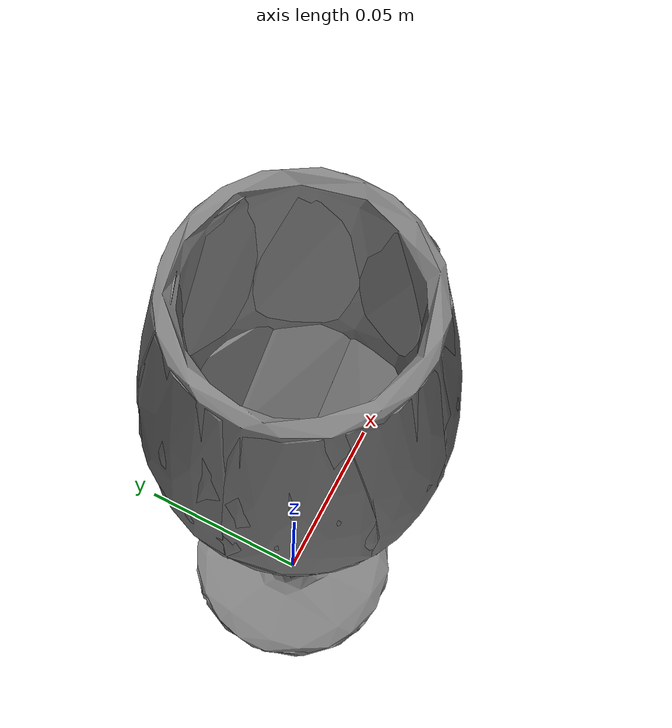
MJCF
<mujoco model="wine_glass1">
  <asset>
    <mesh file="../../meshes/train/wine_glass1/simple_mesh.stl" name="wine_glass1_mesh" scale="1 1 1"/>
    <mesh file="../../meshes/train/wine_glass1/wine_glass1_hull_1.stl" name="wine_glass1_hull_mesh_1" scale="1 1 1"/>
    <mesh file="../../meshes/train/wine_glass1/wine_glass1_hull_2.stl" name="wine_glass1_hull_mesh_2" scale="1 1 1"/>
    <mesh file="../../meshes/train/wine_glass1/wine_glass1_hull_3.stl" name="wine_glass1_hull_mesh_3" scale="1 1 1"/>
    <mesh file="../../meshes/train/wine_glass1/wine_glass1_hull_4.stl" name="wine_glass1_hull_mesh_4" scale="1 1 1"/>
    <mesh file="../../meshes/train/wine_glass1/wine_glass1_hull_5.stl" name="wine_glass1_hull_mesh_5" scale="1 1 1"/>
    <mesh file="../../meshes/train/wine_glass1/wine_glass1_hull_6.stl" name="wine_glass1_hull_mesh_6" scale="1 1 1"/>
    <mesh file="../../meshes/train/wine_glass1/wine_glass1_hull_7.stl" name="wine_glass1_hull_mesh_7" scale="1 1 1"/>
    <mesh file="../../meshes/train/wine_glass1/wine_glass1_hull_8.stl" name="wine_glass1_hull_mesh_8" scale="1 1 1"/>
    <mesh file="../../meshes/train/wine_glass1/wine_glass1_hull_9.stl" name="wine_glass1_hull_mesh_9" scale="1 1 1"/>
    <mesh file="../../meshes/train/wine_glass1/wine_glass1_hull_10.stl" name="wine_glass1_hull_mesh_10" scale="1 1 1"/>
    <mesh file="../../meshes/train/wine_glass1/wine_glass1_hull_11.stl" name="wine_glass1_hull_mesh_11" scale="1 1 1"/>
    <mesh file="../../meshes/train/wine_glass1/wine_glass1_hull_12.stl" name="wine_glass1_hull_mesh_12" scale="1 1 1"/>
    <mesh file="../../meshes/train/wine_glass1/wine_glass1_hull_13.stl" name="wine_glass1_hull_mesh_13" scale="1 1 1"/>
    <mesh file="../../meshes/train/wine_glass1/wine_glass1_hull_14.stl" name="wine_glass1_hull_mesh_14" scale="1 1 1"/>
    <mesh file="../../meshes/train/wine_glass1/wine_glass1_hull_15.stl" name="wine_glass1_hull_mesh_15" scale="1 1 1"/>
    <mesh file="../../meshes/train/wine_glass1/wine_glass1_hull_16.stl" name="wine_glass1_hull_mesh_16" scale="1 1 1"/>
    <mesh file="../../meshes/train/wine_glass1/wine_glass1_hull_17.stl" name="wine_glass1_hull_mesh_17" scale="1 1 1"/>
    <mesh file="../../meshes/train/wine_glass1/wine_glass1_hull_18.stl" name="wine_glass1_hull_mesh_18" scale="1 1 1"/>
    <mesh file="../../meshes/train/wine_glass1/wine_glass1_hull_19.stl" name="wine_glass1_hull_mesh_19" scale="1 1 1"/>
    <mesh file="../../meshes/train/wine_glass1/wine_glass1_hull_20.stl" name="wine_glass1_hull_mesh_20" scale="1 1 1"/>
    <mesh file="../../meshes/train/wine_glass1/wine_glass1_hull_21.stl" name="wine_glass1_hull_mesh_21" scale="1 1 1"/>
    <mesh file="../../meshes/train/wine_glass1/wine_glass1_hull_22.stl" name="wine_glass1_hull_mesh_22" scale="1 1 1"/>
    <mesh file="../../meshes/train/wine_glass1/wine_glass1_hull_23.stl" name="wine_glass1_hull_mesh_23" scale="1 1 1"/>
    <mesh file="../../meshes/train/wine_glass1/wine_glass1_hull_24.stl" name="wine_glass1_hull_mesh_24" scale="1 1 1"/>
    <mesh file="../../meshes/train/wine_glass1/wine_glass1_hull_25.stl" name="wine_glass1_hull_mesh_25" scale="1 1 1"/>
  </asset>
  <worldbody>
    <body>
      <body name="object">
        <geom pos="0 0 0" mesh="wine_glass1_mesh" type="mesh" contype="0" conaffinity="0" group="1"/>
        <geom pos="0 0 0" mesh="wine_glass1_hull_mesh_1" type="mesh" margin="0.001" solimp="0.998 0.998 0.001" solref="0.001 1" density="2000" friction="0.95 0.3 0.1" group="0" condim="4"/>
        <geom pos="0 0 0" mesh="wine_glass1_hull_mesh_2" type="mesh" margin="0.001" solimp="0.998 0.998 0.001" solref="0.001 1" density="2000" friction="0.95 0.3 0.1" group="0" condim="4"/>
        <geom pos="0 0 0" mesh="wine_glass1_hull_mesh_3" type="mesh" margin="0.001" solimp="0.998 0.998 0.001" solref="0.001 1" density="2000" friction="0.95 0.3 0.1" group="0" condim="4"/>
        <geom pos="0 0 0" mesh="wine_glass1_hull_mesh_4" type="mesh" margin="0.001" solimp="0.998 0.998 0.001" solref="0.001 1" density="2000" friction="0.95 0.3 0.1" group="0" condim="4"/>
        <geom pos="0 0 0" mesh="wine_glass1_hull_mesh_5" type="mesh" margin="0.001" solimp="0.998 0.998 0.001" solref="0.001 1" density="2000" friction="0.95 0.3 0.1" group="0" condim="4"/>
        <geom pos="0 0 0" mesh="wine_glass1_hull_mesh_6" type="mesh" margin="0.001" solimp="0.998 0.998 0.001" solref="0.001 1" density="2000" friction="0.95 0.3 0.1" group="0" condim="4"/>
        <geom pos="0 0 0" mesh="wine_glass1_hull_mesh_7" type="mesh" margin="0.001" solimp="0.998 0.998 0.001" solref="0.001 1" density="2000" friction="0.95 0.3 0.1" group="0" condim="4"/>
        <geom pos="0 0 0" mesh="wine_glass1_hull_mesh_8" type="mesh" margin="0.001" solimp="0.998 0.998 0.001" solref="0.001 1" density="2000" friction="0.95 0.3 0.1" group="0" condim="4"/>
        <geom pos="0 0 0" mesh="wine_glass1_hull_mesh_9" type="mesh" margin="0.001" solimp="0.998 0.998 0.001" solref="0.001 1" density="2000" friction="0.95 0.3 0.1" group="0" condim="4"/>
        <geom pos="0 0 0" mesh="wine_glass1_hull_mesh_10" type="mesh" margin="0.001" solimp="0.998 0.998 0.001" solref="0.001 1" density="2000" friction="0.95 0.3 0.1" group="0" condim="4"/>
        <geom pos="0 0 0" mesh="wine_glass1_hull_mesh_11" type="mesh" margin="0.001" solimp="0.998 0.998 0.001" solref="0.001 1" density="2000" friction="0.95 0.3 0.1" group="0" condim="4"/>
        <geom pos="0 0 0" mesh="wine_glass1_hull_mesh_12" type="mesh" margin="0.001" solimp="0.998 0.998 0.001" solref="0.001 1" density="2000" friction="0.95 0.3 0.1" group="0" condim="4"/>
        <geom pos="0 0 0" mesh="wine_glass1_hull_mesh_13" type="mesh" margin="0.001" solimp="0.998 0.998 0.001" solref="0.001 1" density="2000" friction="0.95 0.3 0.1" group="0" condim="4"/>
        <geom pos="0 0 0" mesh="wine_glass1_hull_mesh_14" type="mesh" margin="0.001" solimp="0.998 0.998 0.001" solref="0.001 1" density="2000" friction="0.95 0.3 0.1" group="0" condim="4"/>
        <geom pos="0 0 0" mesh="wine_glass1_hull_mesh_15" type="mesh" margin="0.001" solimp="0.998 0.998 0.001" solref="0.001 1" density="2000" friction="0.95 0.3 0.1" group="0" condim="4"/>
        <geom pos="0 0 0" mesh="wine_glass1_hull_mesh_16" type="mesh" margin="0.001" solimp="0.998 0.998 0.001" solref="0.001 1" density="2000" friction="0.95 0.3 0.1" group="0" condim="4"/>
        <geom pos="0 0 0" mesh="wine_glass1_hull_mesh_17" type="mesh" margin="0.001" solimp="0.998 0.998 0.001" solref="0.001 1" density="2000" friction="0.95 0.3 0.1" group="0" condim="4"/>
        <geom pos="0 0 0" mesh="wine_glass1_hull_mesh_18" type="mesh" margin="0.001" solimp="0.998 0.998 0.001" solref="0.001 1" density="2000" friction="0.95 0.3 0.1" group="0" condim="4"/>
        <geom pos="0 0 0" mesh="wine_glass1_hull_mesh_19" type="mesh" margin="0.001" solimp="0.998 0.998 0.001" solref="0.001 1" density="2000" friction="0.95 0.3 0.1" group="0" condim="4"/>
        <geom pos="0 0 0" mesh="wine_glass1_hull_mesh_20" type="mesh" margin="0.001" solimp="0.998 0.998 0.001" solref="0.001 1" density="2000" friction="0.95 0.3 0.1" group="0" condim="4"/>
        <geom pos="0 0 0" mesh="wine_glass1_hull_mesh_21" type="mesh" margin="0.001" solimp="0.998 0.998 0.001" solref="0.001 1" density="2000" friction="0.95 0.3 0.1" group="0" condim="4"/>
        <geom pos="0 0 0" mesh="wine_glass1_hull_mesh_22" type="mesh" margin="0.001" solimp="0.998 0.998 0.001" solref="0.001 1" density="2000" friction="0.95 0.3 0.1" group="0" condim="4"/>
        <geom pos="0 0 0" mesh="wine_glass1_hull_mesh_23" type="mesh" margin="0.001" solimp="0.998 0.998 0.001" solref="0.001 1" density="2000" friction="0.95 0.3 0.1" group="0" condim="4"/>
        <geom pos="0 0 0" mesh="wine_glass1_hull_mesh_24" type="mesh" margin="0.001" solimp="0.998 0.998 0.001" solref="0.001 1" density="2000" friction="0.95 0.3 0.1" group="0" condim="4"/>
        <geom pos="0 0 0" mesh="wine_glass1_hull_mesh_25" type="mesh" margin="0.001" solimp="0.998 0.998 0.001" solref="0.001 1" density="2000" friction="0.95 0.3 0.1" group="0" condim="4"/>
      </body>
      <site rgba="0 0 0 0" size="0.005" pos="0 0 -0.001" name="bottom_site"/>
      <site rgba="0 0 0 0" size="0.005" pos="0 0 0.02" name="top_site"/>
      <site rgba="0 0 0 0" size="0.005" pos="0.0375 0.02 0" name="horizontal_radius_site"/>
    </body>
  </worldbody>
</mujoco>
